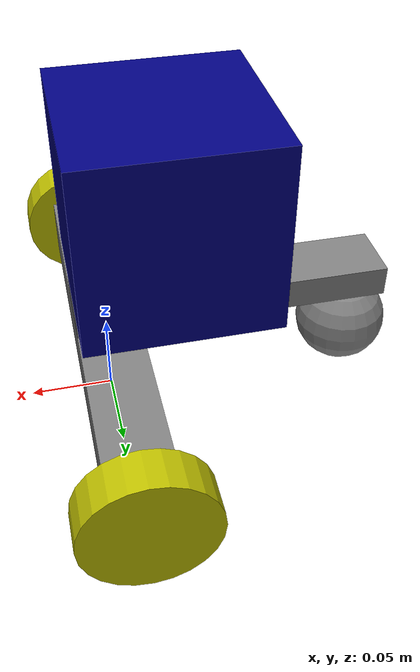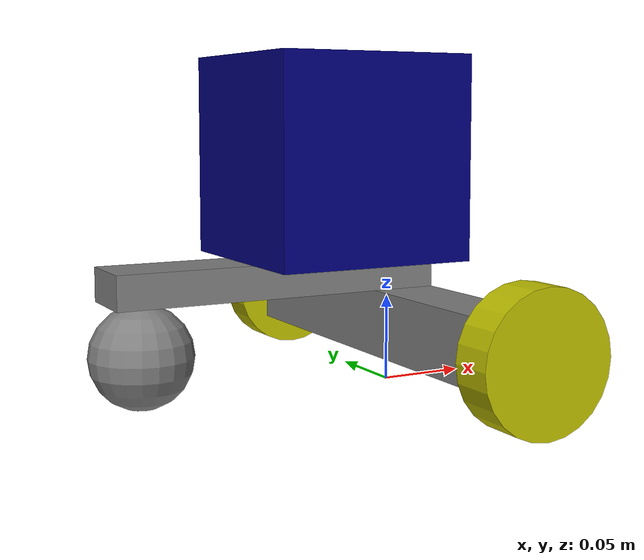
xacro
<?xml version="1.0"?>
<robot name="ddbot" xmlns:xacro="http://www.ros.org/wiki/xacro">

    <xacro:include filename="common_properties.xacro" />
    <xacro:include filename="mobile_base.xacro" />
    <xacro:include filename="mobile_base_gazebo.xacro" />
    <xacro:include filename="$(find bumperbot_description)/urdf/bumperbot_ros2_control.xacro" />

</robot>

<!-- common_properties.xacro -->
<robot xmlns:xacro="http://www.ros.org/wiki/xacro">

    <material name="blue">
        <color rgba="0 0 0.5 1" />
    </material>

    <material name="grey">
        <color rgba="0.5 0.5 0.5 1" />
    </material>

    <material name="yellow">
        <color rgba="0.75 0.75 0 1" />
    </material>

    <material name="red">
        <color rgba="0.5 0 0 1" />
    </material>

    <xacro:macro name="box_inertia" params="m x y z o_xyz o_rpy">
        <inertial>
            <mass value="${m}" />
            <origin xyz="${o_xyz}" rpy="${o_rpy}" />
            <inertia ixx="${m / 12 * (y*y + z*z)}" ixy="0" ixz="0"
                     iyy="${m / 12 * (x*x + z*z)}" iyz="0"
                     izz="${m / 12 * (x*x + y*y)}" />
        </inertial>
    </xacro:macro>

    <xacro:macro name="cylinder_inertia" params="m r l o_xyz o_rpy">
        <inertial>
            <mass value="${m}" />
            <origin xyz="${o_xyz}" rpy="${o_rpy}" />
            <inertia ixx="${m/12 * (3*r*r + l*l)}" ixy="0" ixz="0"
                     iyy="${m/12 * (3*r*r + l*l)}" iyz="0"
                     izz="${m/12 * (r*r)}" />
        </inertial>
    </xacro:macro>

    <xacro:macro name="sphere_inertia" params="m r o_xyz o_rpy">
        <inertial>
            <mass value="${m}" />
            <origin xyz="${o_xyz}" rpy="${o_rpy}" />
            <inertia ixx="${2/5 * m * r*r}" ixy="0" ixz="0"
                     iyy="${2/5 * m * r*r}" iyz="0"
                     izz="${2/5 * m * r*r}" />
        </inertial>
    </xacro:macro>

</robot>

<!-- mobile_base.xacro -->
<robot xmlns:xacro="http://www.ros.org/wiki/xacro">

    <xacro:arg name="is_ignition" default="true" />

    <xacro:property name="unit" value="0.038" />

    <xacro:property name="base_length" value="${unit * 3}" />
    <xacro:property name="base_width" value="${unit * 3}" />
    <xacro:property name="base_height" value="${unit * 3}" />

    <xacro:property name="tail_length" value="${unit * 5}" />
    <xacro:property name="tail_width" value="${unit * 1}" />
    <xacro:property name="tail_height" value="${unit * 0.5}" />

    <xacro:property name="caster_radius" value="${unit * 0.75}" />

    <xacro:property name="hub_width" value="0.013" />
    <xacro:property name="cross_beam_length" value="${unit * 1}" />
    <xacro:property name="cross_beam_width" value="${unit * 6 + hub_width * 2}" />
    <xacro:property name="cross_beam_height" value="${unit * 1}" />

    <xacro:property name="wheel_radius" value="${unit * 1}" />
    <xacro:property name="wheel_length" value="0.024" />

    <link name="base_footprint" />

    <link name="base_link">
        <visual>
            <geometry>
                <box size="${base_length} ${base_width} ${base_height}" />
            </geometry>
            <origin xyz="0 0 ${base_height / 2.0}" rpy="0 0 0" />
            <material name="blue" />
        </visual>
        <collision>
            <geometry>
                <box size="${base_length} ${base_width} ${base_height}" />
            </geometry>
            <origin xyz="0 0 ${base_height / 2.0}" rpy="0 0 0" />
        </collision>
        <xacro:box_inertia m="0.75" x="${base_length}" y="${base_width}" z="${base_height}"
                           o_xyz="0 0 ${base_height / 2.0}" o_rpy="0 0 0" />
    </link>

    <link name="tail_link">
        <visual>
            <geometry>
                <box size="${tail_length} ${tail_width} ${tail_height}" />
            </geometry>
            <origin xyz="0 0 ${tail_height / 2.0}" rpy="0 0 0" />
            <material name="grey" />
        </visual>
        <collision>
            <geometry>
                <box size="${tail_length} ${tail_width} ${tail_height}" />
            </geometry>
            <origin xyz="0 0 ${tail_height / 2.0}" rpy="0 0 0" />
        </collision>
    </link>

    <link name="caster_link">
        <visual>
            <geometry>
                <sphere radius="${caster_radius}" />
            </geometry>
            <origin xyz="0 0 0" rpy="0 0 0" />
            <material name="grey" />
        </visual>
        <collision>
            <geometry>
                <sphere radius="${caster_radius}" />
            </geometry>
            <origin xyz="0 0 0" rpy="0 0 0" />
        </collision>
        <xacro:sphere_inertia m="0.25" r="${caster_radius}"
                              o_xyz="0 0 0" o_rpy="0 0 0" />
    </link>

    <link name="cross_beam_link">
        <visual>
            <geometry>
                <box size="${cross_beam_length} ${cross_beam_width} ${cross_beam_height}" />
            </geometry>
            <origin xyz="0 0 ${cross_beam_height / 2.0}" rpy="0 0 0" />
            <material name="grey" />
        </visual>
        <collision>
            <geometry>
                <box size="${cross_beam_length} ${cross_beam_width} ${cross_beam_height}" />
            </geometry>
            <origin xyz="0 0 ${cross_beam_height / 2.0}" rpy="0 0 0" />
        </collision>
    </link>

    <xacro:macro name="wheel_link" params="prefix">
        <link name="${prefix}_wheel_link">
            <visual>
                <geometry>
                    <cylinder radius="${wheel_radius}" length="${wheel_length}" />
                </geometry>
                <origin xyz="0 0 0" rpy="${pi / 2.0} 0 0" />
                <material name="yellow" />
            </visual>
            <collision>
                <geometry>
                    <sphere radius="${wheel_radius}" />
                </geometry>
                <origin xyz="0 0 0" rpy="0 0 0" />
            </collision>
            <xacro:cylinder_inertia m="0.25" r="${wheel_radius}" l="${wheel_length}"
                                    o_xyz="0 0 0" o_rpy="${pi / 2.0} 0 0" />
        </link>
    </xacro:macro>

    <xacro:wheel_link prefix="right" />
    <xacro:wheel_link prefix="left" />

    <joint name="base_joint" type="fixed">
        <parent link="base_footprint" />
        <child link="base_link" />
        <origin xyz="${-unit} 0 ${wheel_radius + cross_beam_height / 2.0 + tail_height}" rpy="0 0 0"/>
    </joint>

    <joint name="base_tail_joint" type="fixed">
        <parent link="base_link" />
        <child link="tail_link" />
        <origin xyz="${-unit} 0 ${-tail_height}" rpy="0 0 0"/>
    </joint>

    <joint name="tail_caster_joint" type="fixed">
        <parent link="tail_link" />
        <child link="caster_link" />
        <origin xyz="${-unit * 2} 0 ${-caster_radius}" rpy="0 0 0"/>
    </joint>

    <joint name="riser_cross_beam_joint" type="fixed">
        <parent link="tail_link" />
        <child link="cross_beam_link" />
        <origin xyz="${unit * 2} 0 ${-cross_beam_height}" rpy="0 0 0"/>
    </joint>

    <joint name="right_wheel_joint" type="continuous">
        <parent link="cross_beam_link" />
        <child link="right_wheel_link" />
        <origin xyz="0 ${-(cross_beam_width + wheel_length) / 2.0} ${cross_beam_height / 2.0}" rpy="0 0 0"/>
        <axis xyz="0 1 0" />
    </joint>

    <joint name="left_wheel_joint" type="continuous">
        <parent link="cross_beam_link" />
        <child link="left_wheel_link" />
        <origin xyz="0 ${(cross_beam_width + wheel_length) / 2.0} ${cross_beam_height / 2.0}" rpy="0 0 0"/>
        <axis xyz="0 1 0" />
    </joint>

</robot>
